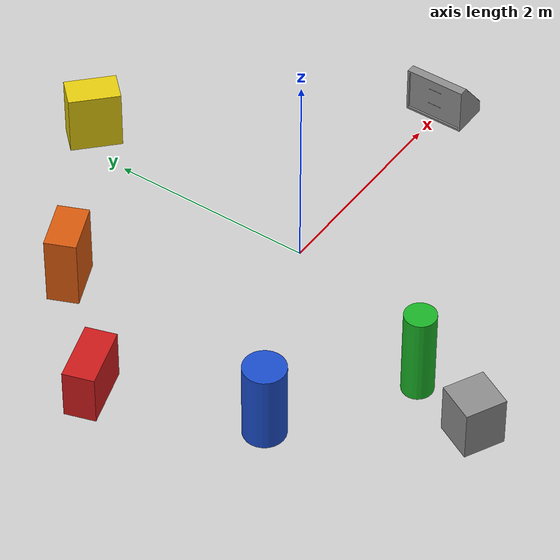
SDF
<?xml version="1.0" ?>
<sdf version='1.8'>
  <world name='test'>

    <physics name='1ms' type='ignored'>
      <max_step_size>0.01</max_step_size>
      <real_time_factor>1</real_time_factor>
    </physics>

    <plugin filename="libgz-sim-physics-system.so"
            name="gz::sim::systems::Physics"/>
    <plugin filename="libgz-sim-user-commands-system.so"
            name="gz::sim::systems::UserCommands"/>
    <plugin filename="libgz-sim-scene-broadcaster-system.so"
            name="gz::sim::systems::SceneBroadcaster"/>
    <plugin filename="libgz-sim-sensors-system.so"
            name="gz::sim::systems::Sensors">
      <render_engine>ogre2</render_engine>
    </plugin>
    <plugin filename="libgz-sim-contact-system.so"
            name="gz::sim::systems::Contact"/>

    <!-- ── Ground plane ─────────────────────────────────────────────── -->
    <model name='ground_plane'>
      <static>true</static>
      <link name='link'>
        <collision name='collision'>
          <geometry><plane><normal>0 0 1</normal><size>100 100</size></plane></geometry>
        </collision>
        <visual name='visual'>
          <geometry><plane><normal>0 0 1</normal><size>100 100</size></plane></geometry>
          <material>
            <ambient>0.8 0.8 0.8 1</ambient>
            <diffuse>0.8 0.8 0.8 1</diffuse>
            <specular>0.8 0.8 0.8 1</specular>
          </material>
        </visual>
      </link>
    </model>

    <!-- ── Charging dock (world 2,0) ─────────────────────────────────── -->
    <include>
      <uri>model://charging_dock</uri>
      <name>charging_dock</name>
      <pose>2.0 0.0 0 0 0 0</pose>
    </include>

    <!-- ── Lights ────────────────────────────────────────────────────── -->
    <light name='sun' type='directional'>
      <pose>0 0 10 0 -0 0</pose>
      <cast_shadows>true</cast_shadows>
      <intensity>1</intensity>
      <direction>-0.5 0.1 -0.9</direction>
      <diffuse>0.8 0.8 0.8 1</diffuse>
      <specular>0.2 0.2 0.2 1</specular>
      <attenuation><range>1000</range><linear>0.01</linear>
                   <constant>0.9</constant><quadratic>0.001</quadratic></attenuation>
    </light>

    <!-- Fill light facing the ArUco face of the dock -->
    <light name='dock_fill' type='directional'>
      <pose>0 0 5 0 0 0</pose>
      <cast_shadows>false</cast_shadows>
      <intensity>1.2</intensity>
      <direction>0.8 0 -0.6</direction>
      <diffuse>1 1 1 1</diffuse>
      <specular>0 0 0 1</specular>
    </light>

    <!-- Obs 1 — orange shelf, world (-1.5, 1.5) -->
    <model name="obs_box_1">
      <static>true</static>
      <pose>-1.5 1.5 0 0 0 0.4</pose>
      <link name="link">
        <collision name="col">
          <pose>0 0 0.35 0 0 0</pose>
          <geometry><box><size>0.50 0.30 0.70</size></box></geometry>
        </collision>
        <visual name="vis">
          <pose>0 0 0.35 0 0 0</pose>
          <geometry><box><size>0.50 0.30 0.70</size></box></geometry>
          <material>
            <ambient>0.85 0.35 0.05 1</ambient>
            <diffuse>0.85 0.35 0.05 1</diffuse>
          </material>
        </visual>
      </link>
    </model>

    <!-- Obs 2 — blue cylinder, world (-2.0, -1.0) -->
    <model name="obs_cyl_1">
      <static>true</static>
      <pose>-2.0 -1.0 0 0 0 0</pose>
      <link name="link">
        <collision name="col">
          <pose>0 0 0.40 0 0 0</pose>
          <geometry><cylinder><radius>0.20</radius><length>0.80</length></cylinder></geometry>
        </collision>
        <visual name="vis">
          <pose>0 0 0.40 0 0 0</pose>
          <geometry><cylinder><radius>0.20</radius><length>0.80</length></cylinder></geometry>
          <material>
            <ambient>0.10 0.30 0.80 1</ambient>
            <diffuse>0.10 0.30 0.80 1</diffuse>
          </material>
        </visual>
      </link>
    </model>

    <!-- Obs 3 — yellow box, world (0.2, 2.5) -->
    <model name="obs_box_2">
      <static>true</static>
      <pose>0.2 2.5 0 0 0 0.8</pose>
      <link name="link">
        <collision name="col">
          <pose>0 0 0.30 0 0 0</pose>
          <geometry><box><size>0.30 0.50 0.60</size></box></geometry>
        </collision>
        <visual name="vis">
          <pose>0 0 0.30 0 0 0</pose>
          <geometry><box><size>0.30 0.50 0.60</size></box></geometry>
          <material>
            <ambient>0.90 0.80 0.05 1</ambient>
            <diffuse>0.90 0.80 0.05 1</diffuse>
          </material>
        </visual>
      </link>
    </model>

    <!-- Obs 4 — green cylinder, world (-0.8, -1.8) -->
    <model name="obs_cyl_2">
      <static>true</static>
      <pose>-0.8 -1.8 0 0 0 0</pose>
      <link name="link">
        <collision name="col">
          <pose>0 0 0.45 0 0 0</pose>
          <geometry><cylinder><radius>0.15</radius><length>0.90</length></cylinder></geometry>
        </collision>
        <visual name="vis">
          <pose>0 0 0.45 0 0 0</pose>
          <geometry><cylinder><radius>0.15</radius><length>0.90</length></cylinder></geometry>
          <material>
            <ambient>0.10 0.70 0.15 1</ambient>
            <diffuse>0.10 0.70 0.15 1</diffuse>
          </material>
        </visual>
      </link>
    </model>

    <!-- Obs 5 — red box, world (-2.5, 0.5) -->
    <model name="obs_box_3">
      <static>true</static>
      <pose>-2.5 0.5 0 0 0 0.3</pose>
      <link name="link">
        <collision name="col">
          <pose>0 0 0.25 0 0 0</pose>
          <geometry><box><size>0.60 0.30 0.50</size></box></geometry>
        </collision>
        <visual name="vis">
          <pose>0 0 0.25 0 0 0</pose>
          <geometry><box><size>0.60 0.30 0.50</size></box></geometry>
          <material>
            <ambient>0.80 0.10 0.10 1</ambient>
            <diffuse>0.80 0.10 0.10 1</diffuse>
          </material>
        </visual>
      </link>
    </model>

    <!-- Obs 6 — gray box, world (-1.0, -2.5) -->
    <model name="obs_box_4">
      <static>true</static>
      <pose>-1.0 -2.5 0 0 0 1.1</pose>
      <link name="link">
        <collision name="col">
          <pose>0 0 0.25 0 0 0</pose>
          <geometry><box><size>0.40 0.40 0.50</size></box></geometry>
        </collision>
        <visual name="vis">
          <pose>0 0 0.25 0 0 0</pose>
          <geometry><box><size>0.40 0.40 0.50</size></box></geometry>
          <material>
            <ambient>0.55 0.55 0.55 1</ambient>
            <diffuse>0.55 0.55 0.55 1</diffuse>
          </material>
        </visual>
      </link>
    </model>

  </world>
</sdf>

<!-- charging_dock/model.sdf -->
<sdf version="1.8">
  <model name="charging_dock">
    <static>true</static>

    <link name="base_link">

      <!-- ── STL mesh body ──────────────────────────────────────────── -->
      <!-- base_carregamento.stl is in mm; scale 0.001 converts to metres -->
      <visual name="body_visual">
        <geometry>
          <mesh>
            <uri>model://charging_dock/meshes/base_carregamento.stl</uri>
            <scale>0.001 0.001 0.001</scale>
          </mesh>
        </geometry>
        <material>
          <ambient>0.4 0.4 0.4 1</ambient>
          <diffuse>0.55 0.55 0.55 1</diffuse>
          <specular>0.1 0.1 0.1 1</specular>
        </material>
      </visual>

      <collision name="body_collision">
        <pose>0.4125 0 0.235 0 0 0</pose>
        <geometry>
          <box>
            <size>0.355 0.600 0.470</size>
          </box>
        </geometry>
      </collision>

    </link>
  </model>
</sdf>
